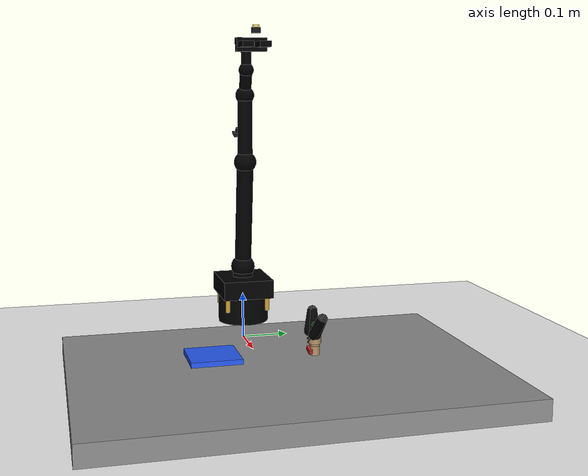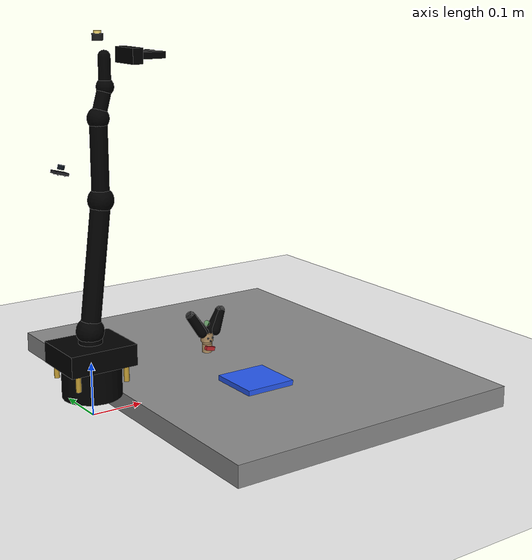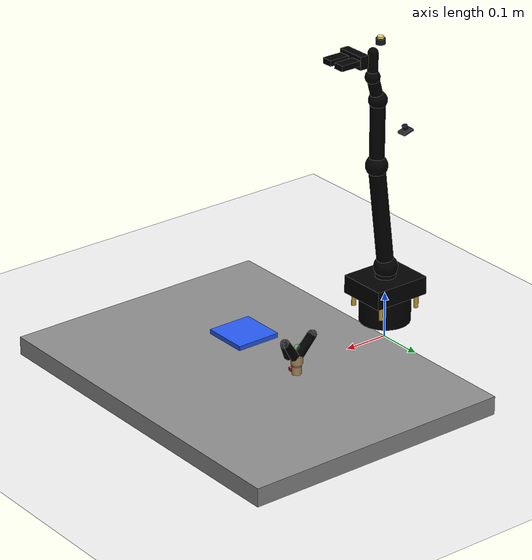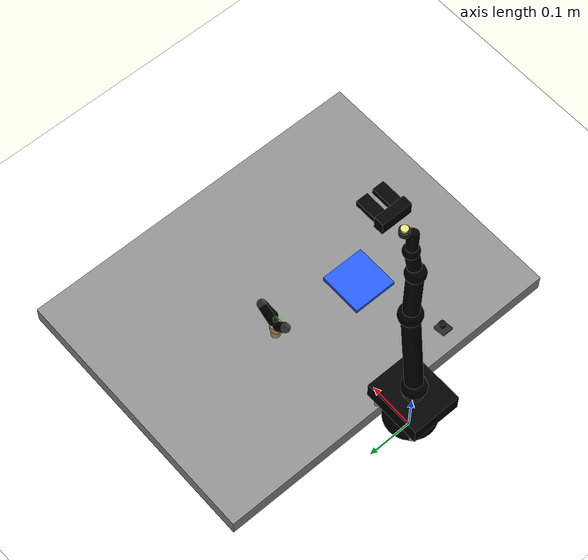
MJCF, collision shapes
<mujoco model="roarm_simplified">
  <compiler angle="degree" coordinate="local"/>
  <option timestep="0.01" gravity="0 0 -9.81" integrator="implicitfast"/>
  <visual>
    <global offwidth="512" offheight="512"/>
  </visual>
  <default>
    <joint damping="1.5" armature="0.02" limited="true"/>
    <geom rgba="0.5 0.5 0.5 1" friction="0.8 0.1 0.1" contype="1" conaffinity="1"/>
    <position kp="45"/>
    <default class="visual">
      <geom type="mesh" contype="0" conaffinity="0" density="0" group="2"/>
    </default>
    <default class="collision">
      <geom rgba="0 0 0 0" contype="1" conaffinity="1"/>
    </default>
  </default>
  <asset>
    <texture name="grid" type="2d" builtin="checker" width="256" height="256"
      rgb1="0.65 0.65 0.65" rgb2="0.45 0.45 0.45"/>
    <material name="table_mat" texture="grid" texrepeat="2 2"/>
    <material name="silver_mat" rgba="0.78 0.79 0.82 1" specular="0.6" shininess="0.7"/>
    <material name="graphite_mat" rgba="0.18 0.19 0.21 1" specular="0.35" shininess="0.35"/>
    <material name="carbon_mat" rgba="0.12 0.13 0.15 1" specular="0.25" shininess="0.18"/>
    <material name="black_plastic_mat" rgba="0.08 0.08 0.09 1" specular="0.08" shininess="0.08"/>
    <material name="camera_board_mat" rgba="0.14 0.14 0.16 1" specular="0.18" shininess="0.12"/>
    <material name="bracket_mat" rgba="0.14 0.14 0.15 1" specular="0.22" shininess="0.18"/>
    <material name="lens_mat" rgba="0.04 0.07 0.10 1" specular="0.95" shininess="0.95"/>
    <material name="led_housing_mat" rgba="0.10 0.10 0.11 1" specular="0.25" shininess="0.2"/>
    <material name="led_lens_mat" rgba="1.0 0.88 0.46 1" emission="0.45" specular="0.12" shininess="0.08"/>
    <material name="accent_gold_mat" rgba="0.78 0.63 0.21 1" specular="0.45" shininess="0.5"/>
    <material name="cork_mat" rgba="0.70 0.57 0.39 1" specular="0.08" shininess="0.05"/>
    <material name="ear_wire_mat" rgba="0.37 0.22 0.10 1" specular="0.06" shininess="0.04"/>
    <material name="bow_mat" rgba="0.78 0.16 0.18 1" specular="0.10" shininess="0.08"/>
    <material name="face_mat" rgba="0.08 0.08 0.08 1" specular="0.02" shininess="0.02"/>
    <mesh name="base_link_mesh" file="../assets/meshes/roarm_m3/base_link.stl" scale="0.001 0.001 0.001"/>
    <mesh name="link1_mesh" file="../assets/meshes/roarm_m3/link1.stl" scale="0.001 0.001 0.001"/>
    <mesh name="link2_mesh" file="../assets/meshes/roarm_m3/link2.stl" scale="0.001 0.001 0.001"/>
    <mesh name="link3_mesh" file="../assets/meshes/roarm_m3/link3.stl" scale="0.001 0.001 0.001"/>
    <mesh name="link4_mesh" file="../assets/meshes/roarm_m3/link4.stl" scale="0.001 0.001 0.001"/>
    <mesh name="link5_mesh" file="../assets/meshes/roarm_m3/link5.stl" scale="0.001 0.001 0.001"/>
    <mesh name="gripper_link_mesh" file="../assets/meshes/roarm_m3/gripper_link.stl" scale="0.001 0.001 0.001"/>
    <mesh name="camera_bracket_mesh" file="../assets/meshes/roarm_m3/camera_bracket.obj" scale="0.001 0.001 0.001"/>
  </asset>
  <worldbody>
    <light name="key" pos="0.0 0.0 1.8" dir="0 0 -1"/>
    <light name="fill" pos="0.75 -0.45 0.95" dir="-0.45 0.20 -1" diffuse="0.45 0.45 0.48" specular="0.06 0.06 0.06" castshadow="false"/>
    <camera name="overview_cam" pos="0.60 -0.65 0.48" xyaxes="0.77 0.64 0.00 -0.28 0.33 0.90" fovy="48"/>
    <geom name="floor" type="plane" size="2 2 0.1" rgba="0.95 0.95 0.95 1"/>
    <body name="table" pos="0.35 0 0.02">
      <geom name="table_geom" type="box" size="0.30 0.40 0.02" material="table_mat"/>
    </body>

    <body name="base" pos="0 0 0.1101">
      <joint name="base_yaw" type="hinge" axis="0 0 1" range="-180 180"/>
      <geom class="visual" mesh="base_link_mesh" material="graphite_mat"/>
      <geom class="collision" type="cylinder" size="0.055 0.035" pos="0 0 -0.035"/>
      <geom class="collision" type="box" size="0.065 0.055 0.020" pos="0 0 0.010"/>
      <geom type="cylinder" size="0.005 0.020" pos="0.048 0.044 -0.020" material="accent_gold_mat" contype="0" conaffinity="0" density="0"/>
      <geom type="cylinder" size="0.005 0.020" pos="-0.048 0.044 -0.020" material="accent_gold_mat" contype="0" conaffinity="0" density="0"/>
      <geom type="cylinder" size="0.005 0.020" pos="0.048 -0.044 -0.020" material="accent_gold_mat" contype="0" conaffinity="0" density="0"/>
      <geom type="cylinder" size="0.005 0.020" pos="-0.048 -0.044 -0.020" material="accent_gold_mat" contype="0" conaffinity="0" density="0"/>

      <body name="link1" pos="0 0 0">
        <geom class="visual" mesh="link1_mesh" material="graphite_mat"/>
        <geom class="collision" type="capsule" fromto="0 0 0 0 0 0.051959" size="0.022"/>

        <body name="shoulder_mount" pos="0 0 0.051959" quat="-0.49999816 0.5 0.5 0.50000184">
          <body name="link2" pos="0 0 0">
            <joint name="shoulder_pitch" type="hinge" axis="0 0 1" range="-90 90"/>
            <geom class="visual" mesh="link2_mesh" material="carbon_mat"/>
            <geom class="collision" type="capsule" fromto="0 0 0 0.236815 0.030002 0" size="0.018"/>
            <geom class="collision" type="sphere" size="0.026" pos="0 0 0"/>

            <body name="elbow_mount" pos="0.236815 0.030002 0" quat="0.70710548 0 0 0.70710808">
              <body name="link3" pos="0 0 0">
                <joint name="elbow_pitch" type="hinge" axis="0 0 1" range="-57.2958 169.0228"/>
                <geom class="visual" mesh="link3_mesh" material="graphite_mat"/>
                <geom class="collision" type="capsule" fromto="0 0 0 0 -0.144586 0" size="0.016"/>
                <geom class="collision" type="sphere" size="0.024" pos="0 0 0"/>

                <body name="forearm_camera_mount" pos="-0.06 -0.048 0" euler="180 0 75">
                  <geom type="mesh" mesh="camera_bracket_mesh" pos="0 0.010 0" material="bracket_mat" contype="0" conaffinity="0" density="0"/>
                  <geom type="box" size="0.0105 0.0125 0.0025" pos="0.004 0.018 0" quat="0.70710678 0 0.70710678 0" material="camera_board_mat" contype="0" conaffinity="0" density="0"/>
                  <geom type="cylinder" size="0.006 0.004" pos="0.014 0.018 0" quat="0.70710678 0 0.70710678 0" material="lens_mat" contype="0" conaffinity="0" density="0"/>
                  <geom type="cylinder" size="0.0014 0.0016" pos="0.0016 0.02475 0.0075" quat="0.70710678 0 0.70710678 0" material="silver_mat" contype="0" conaffinity="0" density="0"/>
                  <geom type="cylinder" size="0.0014 0.0016" pos="0.0016 0.02475 -0.0075" quat="0.70710678 0 0.70710678 0" material="silver_mat" contype="0" conaffinity="0" density="0"/>
                  <geom type="cylinder" size="0.0014 0.0016" pos="0.0016 0.01125 0.0075" quat="0.70710678 0 0.70710678 0" material="silver_mat" contype="0" conaffinity="0" density="0"/>
                  <geom type="cylinder" size="0.0014 0.0016" pos="0.0016 0.01125 -0.0075" quat="0.70710678 0 0.70710678 0" material="silver_mat" contype="0" conaffinity="0" density="0"/>
                  <camera name="forearm_cam" pos="0.026 0.046 0" euler="0 -90 0" fovy="100"/>
                </body>

                <body name="wrist_pitch_mount" pos="0 -0.144586 0">
                  <body name="link4" pos="0 0 0">
                    <joint name="wrist_pitch" type="hinge" axis="0 0 1" range="-90 90"/>
                    <geom class="visual" mesh="link4_mesh" material="graphite_mat"/>
                    <geom class="collision" type="capsule" fromto="0 0 0 0.015147 -0.053653 0" size="0.013"/>
                    <geom class="collision" type="sphere" size="0.020" pos="0 0 0"/>

                    <body name="wrist_roll_mount" pos="0.015147 -0.053653 0" quat="-0.49999816 -0.5 -0.5 0.50000184">
                      <body name="link5" pos="0 0 0">
                        <joint name="wrist_roll" type="hinge" axis="0 0 1" range="-180 180"/>
                        <geom class="visual" mesh="link5_mesh" material="black_plastic_mat"/>
                        <geom class="collision" type="capsule" fromto="0 0 0 0 0 0.052035" size="0.011"/>
                        <geom class="collision" type="sphere" size="0.016" pos="0 0 0"/>

                        <body name="hand_tcp" pos="0 0 0.115428" quat="0.49999816 0.5 -0.5 0.50000184">
                          <site name="ee_site" pos="0 0 0" size="0.0005" rgba="0 0 0 0"/>
                        </body>

                        <body name="gripper_mount" pos="0 0.018821 0.052035" quat="-0.49999816 0.5 0.5 0.50000184">
                          <body name="gripper_led" pos="0.032 -0.022 -0.019">
                            <geom type="cylinder" size="0.010 0.006" quat="0.70710678 0 0.70710678 0" material="led_housing_mat" contype="0" conaffinity="0" density="0"/>
                            <geom type="cylinder" size="0.007 0.0028" pos="0.008 0 0" quat="0.70710678 0 0.70710678 0" material="led_lens_mat" contype="0" conaffinity="0" density="0"/>
                            <light name="gripper_led_light" pos="0.008 0 0" dir="1 0 0" directional="false" cutoff="34" exponent="14"
                              diffuse="0.92 0.84 0.60" specular="0.08 0.08 0.08" attenuation="0.10 0 1.10" castshadow="false"/>
                          </body>
                          <body name="gripper_link" pos="0 0 0">
                            <joint name="gripper_open" type="hinge" axis="0 0 1" range="0 135"/>
                            <geom class="visual" mesh="gripper_link_mesh" material="black_plastic_mat"/>
                            <geom name="gripper_palm_geom" class="collision" type="box" size="0.014 0.032 0.010" pos="0 0 0.030"/>
                            <geom name="gripper_upper_finger_geom" class="collision" type="box" size="0.006 0.012 0.030" pos="0 0.018 0.056"/>
                            <geom name="gripper_lower_finger_geom" class="collision" type="box" size="0.006 0.012 0.030" pos="0 -0.018 0.056"/>
                          </body>
                        </body>
                      </body>
                    </body>
                  </body>
                </body>
              </body>
            </body>
          </body>
        </body>
      </body>
    </body>

    <body name="target" pos="0.30 0.08 0.040">
      <geom name="target_body_lower" type="cylinder" size="0.010 0.0115" pos="0 0 0.0115" material="cork_mat"/>
      <geom name="target_body_upper" type="cylinder" size="0.0125 0.009" pos="0 0 0.032" material="cork_mat"/>
      <geom name="target_body_neck" type="sphere" size="0.0105" pos="0 0 0.021" material="cork_mat"/>
      <geom name="target_left_ear_front" type="capsule" fromto="0.006 0 0.040 0.035 0.005 0.080" size="0.0030" material="ear_wire_mat"/>
      <geom name="target_left_ear_back" type="capsule" fromto="0.035 0.005 0.080 0.016 -0.007 0.044" size="0.0030" material="ear_wire_mat"/>
      <geom name="target_right_ear_front" type="capsule" fromto="-0.006 0 0.040 -0.035 0.005 0.080" size="0.0030" material="ear_wire_mat"/>
      <geom name="target_right_ear_back" type="capsule" fromto="-0.035 0.005 0.080 -0.016 -0.007 0.044" size="0.0030" material="ear_wire_mat"/>
      <geom name="target_left_ear_front_contact" class="collision" type="capsule" fromto="0.006 0 0.040 0.035 0.005 0.080" size="0.0100"/>
      <geom name="target_left_ear_back_contact" class="collision" type="capsule" fromto="0.035 0.005 0.080 0.016 -0.007 0.044" size="0.0100"/>
      <geom name="target_right_ear_front_contact" class="collision" type="capsule" fromto="-0.006 0 0.040 -0.035 0.005 0.080" size="0.0100"/>
      <geom name="target_right_ear_back_contact" class="collision" type="capsule" fromto="-0.035 0.005 0.080 -0.016 -0.007 0.044" size="0.0100"/>
      <geom name="target_bow" type="box" size="0.010 0.0035 0.004" pos="0 -0.0105 0.010" material="bow_mat" euler="0 14 0"/>
      <geom name="target_face_left_eye" type="sphere" size="0.0019" pos="0.0055 -0.0125 0.032" material="face_mat"/>
      <geom name="target_face_right_eye" type="sphere" size="0.0019" pos="-0.0055 -0.0125 0.032" material="face_mat"/>
      <geom name="target_face_nose" type="sphere" size="0.0018" pos="0 -0.0135 0.026" material="face_mat"/>
      <site name="target_site" pos="0 0 0.027" size="0.010" rgba="1 0 0 1"/>
      <site name="target_grasp_site" pos="0 0 0.060" size="0.006" rgba="0 1 0 0.2"/>
      <site name="target_left_grasp_base" pos="0.018 0.001 0.056" size="0.006" rgba="0 1 0 0.20"/>
      <site name="target_left_grasp_mid" pos="0.028 0.003 0.069" size="0.007" rgba="0 1 0 0.45"/>
      <site name="target_right_grasp_base" pos="-0.018 0.001 0.056" size="0.006" rgba="0 1 0 0.20"/>
      <site name="target_right_grasp_mid" pos="-0.028 0.003 0.069" size="0.007" rgba="0 1 0 0.45"/>
    </body>
    <body name="distractor" pos="0.28 -0.12 0.045">
      <geom name="dropzone_geom" type="box" size="0.050 0.050 0.005" rgba="0.15 0.35 0.95 1"/>
    </body>
  </worldbody>
  <actuator>
    <position name="a_base" joint="base_yaw" ctrlrange="-3.1416 3.1416"/>
    <position name="a_shoulder" joint="shoulder_pitch" ctrlrange="-1.5708 1.5708"/>
    <position name="a_elbow" joint="elbow_pitch" ctrlrange="-1.0 2.95"/>
    <position name="a_wrist_pitch" joint="wrist_pitch" ctrlrange="-1.5708 1.5708"/>
    <position name="a_wrist_roll" joint="wrist_roll" ctrlrange="-3.1416 3.1416"/>
    <position name="a_gripper" joint="gripper_open" ctrlrange="0 2.3562"/>
  </actuator>
</mujoco>
